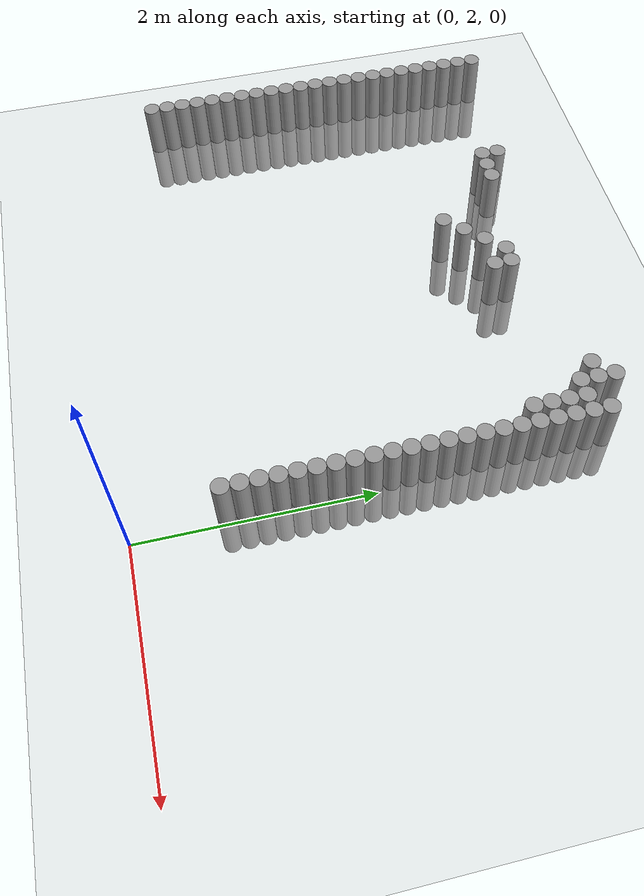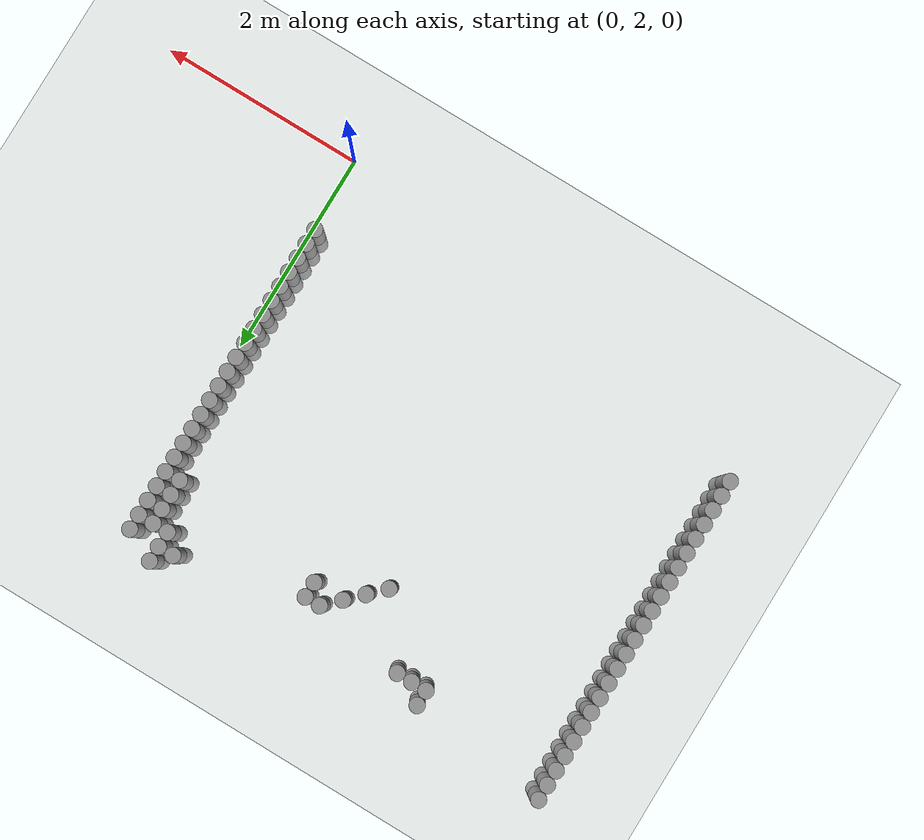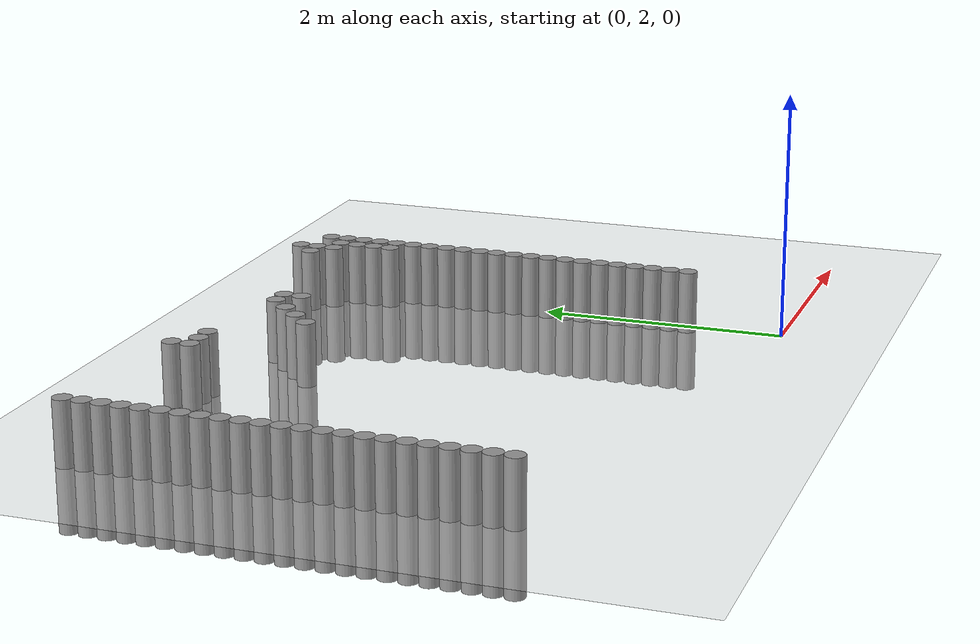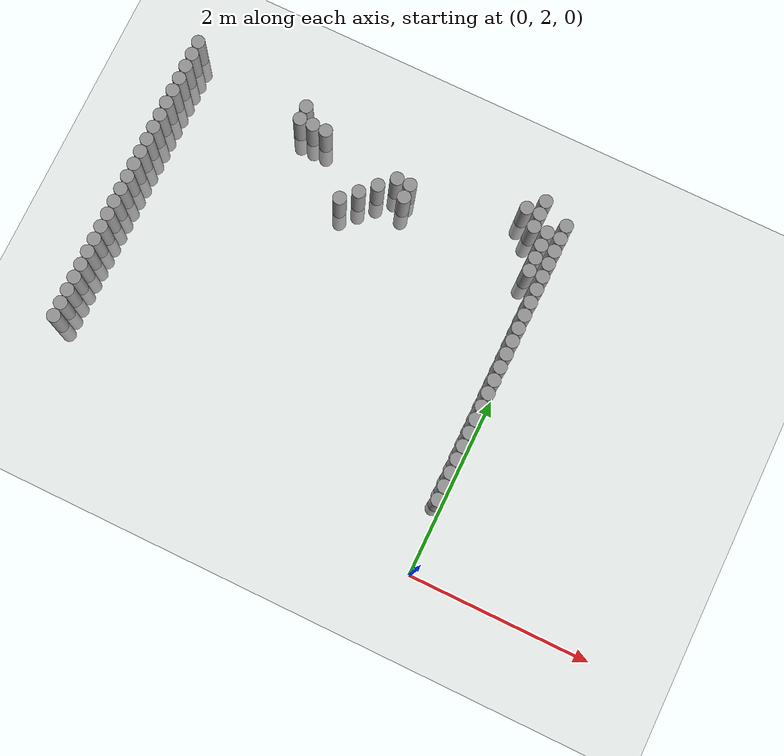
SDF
<sdf version="1.6">
 <world name="default">
  <model name="ground_plane">
   <static>1</static>
   <static>1</static>
   <link name="link">
    <collision name="collision">
     <geometry><plane><normal>0 0 1</normal><size>100 100</size></plane></geometry>
     <surface><friction><ode><mu>100</mu><mu2>50</mu2></ode></friction></surface>
    </collision>
    <visual name="visual">
     <cast_shadows>0</cast_shadows>
     <geometry><plane><normal>0 0 1</normal><size>100 100</size></plane></geometry>
     <material>
      <script><uri>file://media/materials/scripts/gazebo.material</uri><name>Gazebo/Grey</name></script>
     </material>
    </visual>
   </link>
  </model>
  <model name="unit_cylinder_64">
   <static>1</static>
   <pose>-0.075000 2.775000 0.000000 0.000000 0.000000 0.000000</pose>
   <link name="link">
    <inertial>
     <mass>1</mass>
     <inertia><ixx>0.145833</ixx><ixy>0</ixy><ixz>0</ixz><iyy>0.145833</iyy><iyz>0</iyz><izz>0.125</izz></inertia>
    </inertial>
    <collision name="collision">
     <geometry><cylinder><radius>0.075000</radius><length>1</length></cylinder></geometry>
    </collision>
    <visual name="visual">
     <geometry><cylinder><radius>0.075000</radius><length>1</length></cylinder></geometry>
     <material>
      <script><name>Gazebo/Grey</name><uri>file://media/materials/scripts/gazebo.material</uri></script>
     </material>
    </visual>
   </link>
  </model>
  <model name="unit_cylinder_65">
   <static>1</static>
   <pose>-4.425000 2.775000 0.000000 0.000000 0.000000 0.000000</pose>
   <link name="link">
    <inertial>
     <mass>1</mass>
     <inertia><ixx>0.145833</ixx><ixy>0</ixy><ixz>0</ixz><iyy>0.145833</iyy><iyz>0</iyz><izz>0.125</izz></inertia>
    </inertial>
    <collision name="collision">
     <geometry><cylinder><radius>0.075000</radius><length>1</length></cylinder></geometry>
    </collision>
    <visual name="visual">
     <geometry><cylinder><radius>0.075000</radius><length>1</length></cylinder></geometry>
     <material>
      <script><name>Gazebo/Grey</name><uri>file://media/materials/scripts/gazebo.material</uri></script>
     </material>
    </visual>
   </link>
  </model>
  <model name="unit_cylinder_66">
   <static>1</static>
   <pose>-0.075000 2.925000 0.000000 0.000000 0.000000 0.000000</pose>
   <link name="link">
    <inertial>
     <mass>1</mass>
     <inertia><ixx>0.145833</ixx><ixy>0</ixy><ixz>0</ixz><iyy>0.145833</iyy><iyz>0</iyz><izz>0.125</izz></inertia>
    </inertial>
    <collision name="collision">
     <geometry><cylinder><radius>0.075000</radius><length>1</length></cylinder></geometry>
    </collision>
    <visual name="visual">
     <geometry><cylinder><radius>0.075000</radius><length>1</length></cylinder></geometry>
     <material>
      <script><name>Gazebo/Grey</name><uri>file://media/materials/scripts/gazebo.material</uri></script>
     </material>
    </visual>
   </link>
  </model>
  <model name="unit_cylinder_67">
   <static>1</static>
   <pose>-4.425000 2.925000 0.000000 0.000000 0.000000 0.000000</pose>
   <link name="link">
    <inertial>
     <mass>1</mass>
     <inertia><ixx>0.145833</ixx><ixy>0</ixy><ixz>0</ixz><iyy>0.145833</iyy><iyz>0</iyz><izz>0.125</izz></inertia>
    </inertial>
    <collision name="collision">
     <geometry><cylinder><radius>0.075000</radius><length>1</length></cylinder></geometry>
    </collision>
    <visual name="visual">
     <geometry><cylinder><radius>0.075000</radius><length>1</length></cylinder></geometry>
     <material>
      <script><name>Gazebo/Grey</name><uri>file://media/materials/scripts/gazebo.material</uri></script>
     </material>
    </visual>
   </link>
  </model>
  <model name="unit_cylinder_68">
   <static>1</static>
   <pose>-0.075000 3.075000 0.000000 0.000000 0.000000 0.000000</pose>
   <link name="link">
    <inertial>
     <mass>1</mass>
     <inertia><ixx>0.145833</ixx><ixy>0</ixy><ixz>0</ixz><iyy>0.145833</iyy><iyz>0</iyz><izz>0.125</izz></inertia>
    </inertial>
    <collision name="collision">
     <geometry><cylinder><radius>0.075000</radius><length>1</length></cylinder></geometry>
    </collision>
    <visual name="visual">
     <geometry><cylinder><radius>0.075000</radius><length>1</length></cylinder></geometry>
     <material>
      <script><name>Gazebo/Grey</name><uri>file://media/materials/scripts/gazebo.material</uri></script>
     </material>
    </visual>
   </link>
  </model>
  <model name="unit_cylinder_69">
   <static>1</static>
   <pose>-4.425000 3.075000 0.000000 0.000000 0.000000 0.000000</pose>
   <link name="link">
    <inertial>
     <mass>1</mass>
     <inertia><ixx>0.145833</ixx><ixy>0</ixy><ixz>0</ixz><iyy>0.145833</iyy><iyz>0</iyz><izz>0.125</izz></inertia>
    </inertial>
    <collision name="collision">
     <geometry><cylinder><radius>0.075000</radius><length>1</length></cylinder></geometry>
    </collision>
    <visual name="visual">
     <geometry><cylinder><radius>0.075000</radius><length>1</length></cylinder></geometry>
     <material>
      <script><name>Gazebo/Grey</name><uri>file://media/materials/scripts/gazebo.material</uri></script>
     </material>
    </visual>
   </link>
  </model>
  <model name="unit_cylinder_70">
   <static>1</static>
   <pose>-0.075000 3.225000 0.000000 0.000000 0.000000 0.000000</pose>
   <link name="link">
    <inertial>
     <mass>1</mass>
     <inertia><ixx>0.145833</ixx><ixy>0</ixy><ixz>0</ixz><iyy>0.145833</iyy><iyz>0</iyz><izz>0.125</izz></inertia>
    </inertial>
    <collision name="collision">
     <geometry><cylinder><radius>0.075000</radius><length>1</length></cylinder></geometry>
    </collision>
    <visual name="visual">
     <geometry><cylinder><radius>0.075000</radius><length>1</length></cylinder></geometry>
     <material>
      <script><name>Gazebo/Grey</name><uri>file://media/materials/scripts/gazebo.material</uri></script>
     </material>
    </visual>
   </link>
  </model>
  <model name="unit_cylinder_71">
   <static>1</static>
   <pose>-4.425000 3.225000 0.000000 0.000000 0.000000 0.000000</pose>
   <link name="link">
    <inertial>
     <mass>1</mass>
     <inertia><ixx>0.145833</ixx><ixy>0</ixy><ixz>0</ixz><iyy>0.145833</iyy><iyz>0</iyz><izz>0.125</izz></inertia>
    </inertial>
    <collision name="collision">
     <geometry><cylinder><radius>0.075000</radius><length>1</length></cylinder></geometry>
    </collision>
    <visual name="visual">
     <geometry><cylinder><radius>0.075000</radius><length>1</length></cylinder></geometry>
     <material>
      <script><name>Gazebo/Grey</name><uri>file://media/materials/scripts/gazebo.material</uri></script>
     </material>
    </visual>
   </link>
  </model>
  <model name="unit_cylinder_72">
   <static>1</static>
   <pose>-0.075000 3.375000 0.000000 0.000000 0.000000 0.000000</pose>
   <link name="link">
    <inertial>
     <mass>1</mass>
     <inertia><ixx>0.145833</ixx><ixy>0</ixy><ixz>0</ixz><iyy>0.145833</iyy><iyz>0</iyz><izz>0.125</izz></inertia>
    </inertial>
    <collision name="collision">
     <geometry><cylinder><radius>0.075000</radius><length>1</length></cylinder></geometry>
    </collision>
    <visual name="visual">
     <geometry><cylinder><radius>0.075000</radius><length>1</length></cylinder></geometry>
     <material>
      <script><name>Gazebo/Grey</name><uri>file://media/materials/scripts/gazebo.material</uri></script>
     </material>
    </visual>
   </link>
  </model>
  <model name="unit_cylinder_73">
   <static>1</static>
   <pose>-4.425000 3.375000 0.000000 0.000000 0.000000 0.000000</pose>
   <link name="link">
    <inertial>
     <mass>1</mass>
     <inertia><ixx>0.145833</ixx><ixy>0</ixy><ixz>0</ixz><iyy>0.145833</iyy><iyz>0</iyz><izz>0.125</izz></inertia>
    </inertial>
    <collision name="collision">
     <geometry><cylinder><radius>0.075000</radius><length>1</length></cylinder></geometry>
    </collision>
    <visual name="visual">
     <geometry><cylinder><radius>0.075000</radius><length>1</length></cylinder></geometry>
     <material>
      <script><name>Gazebo/Grey</name><uri>file://media/materials/scripts/gazebo.material</uri></script>
     </material>
    </visual>
   </link>
  </model>
  <model name="unit_cylinder_74">
   <static>1</static>
   <pose>-0.075000 3.525000 0.000000 0.000000 0.000000 0.000000</pose>
   <link name="link">
    <inertial>
     <mass>1</mass>
     <inertia><ixx>0.145833</ixx><ixy>0</ixy><ixz>0</ixz><iyy>0.145833</iyy><iyz>0</iyz><izz>0.125</izz></inertia>
    </inertial>
    <collision name="collision">
     <geometry><cylinder><radius>0.075000</radius><length>1</length></cylinder></geometry>
    </collision>
    <visual name="visual">
     <geometry><cylinder><radius>0.075000</radius><length>1</length></cylinder></geometry>
     <material>
      <script><name>Gazebo/Grey</name><uri>file://media/materials/scripts/gazebo.material</uri></script>
     </material>
    </visual>
   </link>
  </model>
  <model name="unit_cylinder_75">
   <static>1</static>
   <pose>-4.425000 3.525000 0.000000 0.000000 0.000000 0.000000</pose>
   <link name="link">
    <inertial>
     <mass>1</mass>
     <inertia><ixx>0.145833</ixx><ixy>0</ixy><ixz>0</ixz><iyy>0.145833</iyy><iyz>0</iyz><izz>0.125</izz></inertia>
    </inertial>
    <collision name="collision">
     <geometry><cylinder><radius>0.075000</radius><length>1</length></cylinder></geometry>
    </collision>
    <visual name="visual">
     <geometry><cylinder><radius>0.075000</radius><length>1</length></cylinder></geometry>
     <material>
      <script><name>Gazebo/Grey</name><uri>file://media/materials/scripts/gazebo.material</uri></script>
     </material>
    </visual>
   </link>
  </model>
  <model name="unit_cylinder_76">
   <static>1</static>
   <pose>-0.075000 3.675000 0.000000 0.000000 0.000000 0.000000</pose>
   <link name="link">
    <inertial>
     <mass>1</mass>
     <inertia><ixx>0.145833</ixx><ixy>0</ixy><ixz>0</ixz><iyy>0.145833</iyy><iyz>0</iyz><izz>0.125</izz></inertia>
    </inertial>
    <collision name="collision">
     <geometry><cylinder><radius>0.075000</radius><length>1</length></cylinder></geometry>
    </collision>
    <visual name="visual">
     <geometry><cylinder><radius>0.075000</radius><length>1</length></cylinder></geometry>
     <material>
      <script><name>Gazebo/Grey</name><uri>file://media/materials/scripts/gazebo.material</uri></script>
     </material>
    </visual>
   </link>
  </model>
  <model name="unit_cylinder_77">
   <static>1</static>
   <pose>-4.425000 3.675000 0.000000 0.000000 0.000000 0.000000</pose>
   <link name="link">
    <inertial>
     <mass>1</mass>
     <inertia><ixx>0.145833</ixx><ixy>0</ixy><ixz>0</ixz><iyy>0.145833</iyy><iyz>0</iyz><izz>0.125</izz></inertia>
    </inertial>
    <collision name="collision">
     <geometry><cylinder><radius>0.075000</radius><length>1</length></cylinder></geometry>
    </collision>
    <visual name="visual">
     <geometry><cylinder><radius>0.075000</radius><length>1</length></cylinder></geometry>
     <material>
      <script><name>Gazebo/Grey</name><uri>file://media/materials/scripts/gazebo.material</uri></script>
     </material>
    </visual>
   </link>
  </model>
  <model name="unit_cylinder_78">
   <static>1</static>
   <pose>-0.075000 3.825000 0.000000 0.000000 0.000000 0.000000</pose>
   <link name="link">
    <inertial>
     <mass>1</mass>
     <inertia><ixx>0.145833</ixx><ixy>0</ixy><ixz>0</ixz><iyy>0.145833</iyy><iyz>0</iyz><izz>0.125</izz></inertia>
    </inertial>
    <collision name="collision">
     <geometry><cylinder><radius>0.075000</radius><length>1</length></cylinder></geometry>
    </collision>
    <visual name="visual">
     <geometry><cylinder><radius>0.075000</radius><length>1</length></cylinder></geometry>
     <material>
      <script><name>Gazebo/Grey</name><uri>file://media/materials/scripts/gazebo.material</uri></script>
     </material>
    </visual>
   </link>
  </model>
  <model name="unit_cylinder_79">
   <static>1</static>
   <pose>-4.425000 3.825000 0.000000 0.000000 0.000000 0.000000</pose>
   <link name="link">
    <inertial>
     <mass>1</mass>
     <inertia><ixx>0.145833</ixx><ixy>0</ixy><ixz>0</ixz><iyy>0.145833</iyy><iyz>0</iyz><izz>0.125</izz></inertia>
    </inertial>
    <collision name="collision">
     <geometry><cylinder><radius>0.075000</radius><length>1</length></cylinder></geometry>
    </collision>
    <visual name="visual">
     <geometry><cylinder><radius>0.075000</radius><length>1</length></cylinder></geometry>
     <material>
      <script><name>Gazebo/Grey</name><uri>file://media/materials/scripts/gazebo.material</uri></script>
     </material>
    </visual>
   </link>
  </model>
  <model name="unit_cylinder_80">
   <static>1</static>
   <pose>-0.075000 3.975000 0.000000 0.000000 0.000000 0.000000</pose>
   <link name="link">
    <inertial>
     <mass>1</mass>
     <inertia><ixx>0.145833</ixx><ixy>0</ixy><ixz>0</ixz><iyy>0.145833</iyy><iyz>0</iyz><izz>0.125</izz></inertia>
    </inertial>
    <collision name="collision">
     <geometry><cylinder><radius>0.075000</radius><length>1</length></cylinder></geometry>
    </collision>
    <visual name="visual">
     <geometry><cylinder><radius>0.075000</radius><length>1</length></cylinder></geometry>
     <material>
      <script><name>Gazebo/Grey</name><uri>file://media/materials/scripts/gazebo.material</uri></script>
     </material>
    </visual>
   </link>
  </model>
  <model name="unit_cylinder_81">
   <static>1</static>
   <pose>-4.425000 3.975000 0.000000 0.000000 0.000000 0.000000</pose>
   <link name="link">
    <inertial>
     <mass>1</mass>
     <inertia><ixx>0.145833</ixx><ixy>0</ixy><ixz>0</ixz><iyy>0.145833</iyy><iyz>0</iyz><izz>0.125</izz></inertia>
    </inertial>
    <collision name="collision">
     <geometry><cylinder><radius>0.075000</radius><length>1</length></cylinder></geometry>
    </collision>
    <visual name="visual">
     <geometry><cylinder><radius>0.075000</radius><length>1</length></cylinder></geometry>
     <material>
      <script><name>Gazebo/Grey</name><uri>file://media/materials/scripts/gazebo.material</uri></script>
     </material>
    </visual>
   </link>
  </model>
  <model name="unit_cylinder_82">
   <static>1</static>
   <pose>-0.075000 4.125000 0.000000 0.000000 0.000000 0.000000</pose>
   <link name="link">
    <inertial>
     <mass>1</mass>
     <inertia><ixx>0.145833</ixx><ixy>0</ixy><ixz>0</ixz><iyy>0.145833</iyy><iyz>0</iyz><izz>0.125</izz></inertia>
    </inertial>
    <collision name="collision">
     <geometry><cylinder><radius>0.075000</radius><length>1</length></cylinder></geometry>
    </collision>
    <visual name="visual">
     <geometry><cylinder><radius>0.075000</radius><length>1</length></cylinder></geometry>
     <material>
      <script><name>Gazebo/Grey</name><uri>file://media/materials/scripts/gazebo.material</uri></script>
     </material>
    </visual>
   </link>
  </model>
  <model name="unit_cylinder_83">
   <static>1</static>
   <pose>-4.425000 4.125000 0.000000 0.000000 0.000000 0.000000</pose>
   <link name="link">
    <inertial>
     <mass>1</mass>
     <inertia><ixx>0.145833</ixx><ixy>0</ixy><ixz>0</ixz><iyy>0.145833</iyy><iyz>0</iyz><izz>0.125</izz></inertia>
    </inertial>
    <collision name="collision">
     <geometry><cylinder><radius>0.075000</radius><length>1</length></cylinder></geometry>
    </collision>
    <visual name="visual">
     <geometry><cylinder><radius>0.075000</radius><length>1</length></cylinder></geometry>
     <material>
      <script><name>Gazebo/Grey</name><uri>file://media/materials/scripts/gazebo.material</uri></script>
     </material>
    </visual>
   </link>
  </model>
  <model name="unit_cylinder_84">
   <static>1</static>
   <pose>-0.075000 4.275000 0.000000 0.000000 0.000000 0.000000</pose>
   <link name="link">
    <inertial>
     <mass>1</mass>
     <inertia><ixx>0.145833</ixx><ixy>0</ixy><ixz>0</ixz><iyy>0.145833</iyy><iyz>0</iyz><izz>0.125</izz></inertia>
    </inertial>
    <collision name="collision">
     <geometry><cylinder><radius>0.075000</radius><length>1</length></cylinder></geometry>
    </collision>
    <visual name="visual">
     <geometry><cylinder><radius>0.075000</radius><length>1</length></cylinder></geometry>
     <material>
      <script><name>Gazebo/Grey</name><uri>file://media/materials/scripts/gazebo.material</uri></script>
     </material>
    </visual>
   </link>
  </model>
  <model name="unit_cylinder_85">
   <static>1</static>
   <pose>-4.425000 4.275000 0.000000 0.000000 0.000000 0.000000</pose>
   <link name="link">
    <inertial>
     <mass>1</mass>
     <inertia><ixx>0.145833</ixx><ixy>0</ixy><ixz>0</ixz><iyy>0.145833</iyy><iyz>0</iyz><izz>0.125</izz></inertia>
    </inertial>
    <collision name="collision">
     <geometry><cylinder><radius>0.075000</radius><length>1</length></cylinder></geometry>
    </collision>
    <visual name="visual">
     <geometry><cylinder><radius>0.075000</radius><length>1</length></cylinder></geometry>
     <material>
      <script><name>Gazebo/Grey</name><uri>file://media/materials/scripts/gazebo.material</uri></script>
     </material>
    </visual>
   </link>
  </model>
  <model name="unit_cylinder_86">
   <static>1</static>
   <pose>-0.075000 4.425000 0.000000 0.000000 0.000000 0.000000</pose>
   <link name="link">
    <inertial>
     <mass>1</mass>
     <inertia><ixx>0.145833</ixx><ixy>0</ixy><ixz>0</ixz><iyy>0.145833</iyy><iyz>0</iyz><izz>0.125</izz></inertia>
    </inertial>
    <collision name="collision">
     <geometry><cylinder><radius>0.075000</radius><length>1</length></cylinder></geometry>
    </collision>
    <visual name="visual">
     <geometry><cylinder><radius>0.075000</radius><length>1</length></cylinder></geometry>
     <material>
      <script><name>Gazebo/Grey</name><uri>file://media/materials/scripts/gazebo.material</uri></script>
     </material>
    </visual>
   </link>
  </model>
  <model name="unit_cylinder_87">
   <static>1</static>
   <pose>-4.425000 4.425000 0.000000 0.000000 0.000000 0.000000</pose>
   <link name="link">
    <inertial>
     <mass>1</mass>
     <inertia><ixx>0.145833</ixx><ixy>0</ixy><ixz>0</ixz><iyy>0.145833</iyy><iyz>0</iyz><izz>0.125</izz></inertia>
    </inertial>
    <collision name="collision">
     <geometry><cylinder><radius>0.075000</radius><length>1</length></cylinder></geometry>
    </collision>
    <visual name="visual">
     <geometry><cylinder><radius>0.075000</radius><length>1</length></cylinder></geometry>
     <material>
      <script><name>Gazebo/Grey</name><uri>file://media/materials/scripts/gazebo.material</uri></script>
     </material>
    </visual>
   </link>
  </model>
  <model name="unit_cylinder_88">
   <static>1</static>
   <pose>-0.075000 4.575000 0.000000 0.000000 0.000000 0.000000</pose>
   <link name="link">
    <inertial>
     <mass>1</mass>
     <inertia><ixx>0.145833</ixx><ixy>0</ixy><ixz>0</ixz><iyy>0.145833</iyy><iyz>0</iyz><izz>0.125</izz></inertia>
    </inertial>
    <collision name="collision">
     <geometry><cylinder><radius>0.075000</radius><length>1</length></cylinder></geometry>
    </collision>
    <visual name="visual">
     <geometry><cylinder><radius>0.075000</radius><length>1</length></cylinder></geometry>
     <material>
      <script><name>Gazebo/Grey</name><uri>file://media/materials/scripts/gazebo.material</uri></script>
     </material>
    </visual>
   </link>
  </model>
  <model name="unit_cylinder_89">
   <static>1</static>
   <pose>-4.425000 4.575000 0.000000 0.000000 0.000000 0.000000</pose>
   <link name="link">
    <inertial>
     <mass>1</mass>
     <inertia><ixx>0.145833</ixx><ixy>0</ixy><ixz>0</ixz><iyy>0.145833</iyy><iyz>0</iyz><izz>0.125</izz></inertia>
    </inertial>
    <collision name="collision">
     <geometry><cylinder><radius>0.075000</radius><length>1</length></cylinder></geometry>
    </collision>
    <visual name="visual">
     <geometry><cylinder><radius>0.075000</radius><length>1</length></cylinder></geometry>
     <material>
      <script><name>Gazebo/Grey</name><uri>file://media/materials/scripts/gazebo.material</uri></script>
     </material>
    </visual>
   </link>
  </model>
  <model name="unit_cylinder_90">
   <static>1</static>
   <pose>-0.075000 4.725000 0.000000 0.000000 0.000000 0.000000</pose>
   <link name="link">
    <inertial>
     <mass>1</mass>
     <inertia><ixx>0.145833</ixx><ixy>0</ixy><ixz>0</ixz><iyy>0.145833</iyy><iyz>0</iyz><izz>0.125</izz></inertia>
    </inertial>
    <collision name="collision">
     <geometry><cylinder><radius>0.075000</radius><length>1</length></cylinder></geometry>
    </collision>
    <visual name="visual">
     <geometry><cylinder><radius>0.075000</radius><length>1</length></cylinder></geometry>
     <material>
      <script><name>Gazebo/Grey</name><uri>file://media/materials/scripts/gazebo.material</uri></script>
     </material>
    </visual>
   </link>
  </model>
  <model name="unit_cylinder_91">
   <static>1</static>
   <pose>-4.425000 4.725000 0.000000 0.000000 0.000000 0.000000</pose>
   <link name="link">
    <inertial>
     <mass>1</mass>
     <inertia><ixx>0.145833</ixx><ixy>0</ixy><ixz>0</ixz><iyy>0.145833</iyy><iyz>0</iyz><izz>0.125</izz></inertia>
    </inertial>
    <collision name="collision">
     <geometry><cylinder><radius>0.075000</radius><length>1</length></cylinder></geometry>
    </collision>
    <visual name="visual">
     <geometry><cylinder><radius>0.075000</radius><length>1</length></cylinder></geometry>
     <material>
      <script><name>Gazebo/Grey</name><uri>file://media/materials/scripts/gazebo.material</uri></script>
     </material>
    </visual>
   </link>
  </model>
  <model name="unit_cylinder_92">
   <static>1</static>
   <pose>-0.075000 4.875000 0.000000 0.000000 0.000000 0.000000</pose>
   <link name="link">
    <inertial>
     <mass>1</mass>
     <inertia><ixx>0.145833</ixx><ixy>0</ixy><ixz>0</ixz><iyy>0.145833</iyy><iyz>0</iyz><izz>0.125</izz></inertia>
    </inertial>
    <collision name="collision">
     <geometry><cylinder><radius>0.075000</radius><length>1</length></cylinder></geometry>
    </collision>
    <visual name="visual">
     <geometry><cylinder><radius>0.075000</radius><length>1</length></cylinder></geometry>
     <material>
      <script><name>Gazebo/Grey</name><uri>file://media/materials/scripts/gazebo.material</uri></script>
     </material>
    </visual>
   </link>
  </model>
  <model name="unit_cylinder_93">
   <static>1</static>
   <pose>-4.425000 4.875000 0.000000 0.000000 0.000000 0.000000</pose>
   <link name="link">
    <inertial>
     <mass>1</mass>
     <inertia><ixx>0.145833</ixx><ixy>0</ixy><ixz>0</ixz><iyy>0.145833</iyy><iyz>0</iyz><izz>0.125</izz></inertia>
    </inertial>
    <collision name="collision">
     <geometry><cylinder><radius>0.075000</radius><length>1</length></cylinder></geometry>
    </collision>
    <visual name="visual">
     <geometry><cylinder><radius>0.075000</radius><length>1</length></cylinder></geometry>
     <material>
      <script><name>Gazebo/Grey</name><uri>file://media/materials/scripts/gazebo.material</uri></script>
     </material>
    </visual>
   </link>
  </model>
  <model name="unit_cylinder_94">
   <static>1</static>
   <pose>-0.075000 5.025000 0.000000 0.000000 0.000000 0.000000</pose>
   <link name="link">
    <inertial>
     <mass>1</mass>
     <inertia><ixx>0.145833</ixx><ixy>0</ixy><ixz>0</ixz><iyy>0.145833</iyy><iyz>0</iyz><izz>0.125</izz></inertia>
    </inertial>
    <collision name="collision">
     <geometry><cylinder><radius>0.075000</radius><length>1</length></cylinder></geometry>
    </collision>
    <visual name="visual">
     <geometry><cylinder><radius>0.075000</radius><length>1</length></cylinder></geometry>
     <material>
      <script><name>Gazebo/Grey</name><uri>file://media/materials/scripts/gazebo.material</uri></script>
     </material>
    </visual>
   </link>
  </model>
  <model name="unit_cylinder_95">
   <static>1</static>
   <pose>-4.425000 5.025000 0.000000 0.000000 0.000000 0.000000</pose>
   <link name="link">
    <inertial>
     <mass>1</mass>
     <inertia><ixx>0.145833</ixx><ixy>0</ixy><ixz>0</ixz><iyy>0.145833</iyy><iyz>0</iyz><izz>0.125</izz></inertia>
    </inertial>
    <collision name="collision">
     <geometry><cylinder><radius>0.075000</radius><length>1</length></cylinder></geometry>
    </collision>
    <visual name="visual">
     <geometry><cylinder><radius>0.075000</radius><length>1</length></cylinder></geometry>
     <material>
      <script><name>Gazebo/Grey</name><uri>file://media/materials/scripts/gazebo.material</uri></script>
     </material>
    </visual>
   </link>
  </model>
  <model name="unit_cylinder_96">
   <static>1</static>
   <pose>-4.425000 5.175000 0.000000 0.000000 0.000000 0.000000</pose>
   <link name="link">
    <inertial>
     <mass>1</mass>
     <inertia><ixx>0.145833</ixx><ixy>0</ixy><ixz>0</ixz><iyy>0.145833</iyy><iyz>0</iyz><izz>0.125</izz></inertia>
    </inertial>
    <collision name="collision">
     <geometry><cylinder><radius>0.075000</radius><length>1</length></cylinder></geometry>
    </collision>
    <visual name="visual">
     <geometry><cylinder><radius>0.075000</radius><length>1</length></cylinder></geometry>
     <material>
      <script><name>Gazebo/Grey</name><uri>file://media/materials/scripts/gazebo.material</uri></script>
     </material>
    </visual>
   </link>
  </model>
  <model name="unit_cylinder_97">
   <static>1</static>
   <pose>-4.425000 5.325000 0.000000 0.000000 0.000000 0.000000</pose>
   <link name="link">
    <inertial>
     <mass>1</mass>
     <inertia><ixx>0.145833</ixx><ixy>0</ixy><ixz>0</ixz><iyy>0.145833</iyy><iyz>0</iyz><izz>0.125</izz></inertia>
    </inertial>
    <collision name="collision">
     <geometry><cylinder><radius>0.075000</radius><length>1</length></cylinder></geometry>
    </collision>
    <visual name="visual">
     <geometry><cylinder><radius>0.075000</radius><length>1</length></cylinder></geometry>
     <material>
      <script><name>Gazebo/Grey</name><uri>file://media/materials/scripts/gazebo.material</uri></script>
     </material>
    </visual>
   </link>
  </model>
  <model name="unit_cylinder_98">
   <static>1</static>
   <pose>-4.425000 5.475000 0.000000 0.000000 0.000000 0.000000</pose>
   <link name="link">
    <inertial>
     <mass>1</mass>
     <inertia><ixx>0.145833</ixx><ixy>0</ixy><ixz>0</ixz><iyy>0.145833</iyy><iyz>0</iyz><izz>0.125</izz></inertia>
    </inertial>
    <collision name="collision">
     <geometry><cylinder><radius>0.075000</radius><length>1</length></cylinder></geometry>
    </collision>
    <visual name="visual">
     <geometry><cylinder><radius>0.075000</radius><length>1</length></cylinder></geometry>
     <material>
      <script><name>Gazebo/Grey</name><uri>file://media/materials/scripts/gazebo.material</uri></script>
     </material>
    </visual>
   </link>
  </model>
  <model name="unit_cylinder_99">
   <static>1</static>
   <pose>-4.425000 5.625000 0.000000 0.000000 0.000000 0.000000</pose>
   <link name="link">
    <inertial>
     <mass>1</mass>
     <inertia><ixx>0.145833</ixx><ixy>0</ixy><ixz>0</ixz><iyy>0.145833</iyy><iyz>0</iyz><izz>0.125</izz></inertia>
    </inertial>
    <collision name="collision">
     <geometry><cylinder><radius>0.075000</radius><length>1</length></cylinder></geometry>
    </collision>
    <visual name="visual">
     <geometry><cylinder><radius>0.075000</radius><length>1</length></cylinder></geometry>
     <material>
      <script><name>Gazebo/Grey</name><uri>file://media/materials/scripts/gazebo.material</uri></script>
     </material>
    </visual>
   </link>
  </model>
  <model name="unit_cylinder_100">
   <static>1</static>
   <pose>-4.425000 5.775000 0.000000 0.000000 0.000000 0.000000</pose>
   <link name="link">
    <inertial>
     <mass>1</mass>
     <inertia><ixx>0.145833</ixx><ixy>0</ixy><ixz>0</ixz><iyy>0.145833</iyy><iyz>0</iyz><izz>0.125</izz></inertia>
    </inertial>
    <collision name="collision">
     <geometry><cylinder><radius>0.075000</radius><length>1</length></cylinder></geometry>
    </collision>
    <visual name="visual">
     <geometry><cylinder><radius>0.075000</radius><length>1</length></cylinder></geometry>
     <material>
      <script><name>Gazebo/Grey</name><uri>file://media/materials/scripts/gazebo.material</uri></script>
     </material>
    </visual>
   </link>
  </model>
  <model name="unit_cylinder_101">
   <static>1</static>
   <pose>-4.425000 5.925000 0.000000 0.000000 0.000000 0.000000</pose>
   <link name="link">
    <inertial>
     <mass>1</mass>
     <inertia><ixx>0.145833</ixx><ixy>0</ixy><ixz>0</ixz><iyy>0.145833</iyy><iyz>0</iyz><izz>0.125</izz></inertia>
    </inertial>
    <collision name="collision">
     <geometry><cylinder><radius>0.075000</radius><length>1</length></cylinder></geometry>
    </collision>
    <visual name="visual">
     <geometry><cylinder><radius>0.075000</radius><length>1</length></cylinder></geometry>
     <material>
      <script><name>Gazebo/Grey</name><uri>file://media/materials/scripts/gazebo.material</uri></script>
     </material>
    </visual>
   </link>
  </model>
  <model name="unit_cylinder_102">
   <static>1</static>
   <pose>-4.425000 6.075000 0.000000 0.000000 0.000000 0.000000</pose>
   <link name="link">
    <inertial>
     <mass>1</mass>
     <inertia><ixx>0.145833</ixx><ixy>0</ixy><ixz>0</ixz><iyy>0.145833</iyy><iyz>0</iyz><izz>0.125</izz></inertia>
    </inertial>
    <collision name="collision">
     <geometry><cylinder><radius>0.075000</radius><length>1</length></cylinder></geometry>
    </collision>
    <visual name="visual">
     <geometry><cylinder><radius>0.075000</radius><length>1</length></cylinder></geometry>
     <material>
      <script><name>Gazebo/Grey</name><uri>file://media/materials/scripts/gazebo.material</uri></script>
     </material>
    </visual>
   </link>
  </model>
  <model name="unit_cylinder_139">
   <static>1</static>
   <pose>-3.075000 5.775000 0.000000 0.000000 0.000000 0.000000</pose>
   <link name="link">
    <inertial>
     <mass>1</mass>
     <inertia><ixx>0.145833</ixx><ixy>0</ixy><ixz>0</ixz><iyy>0.145833</iyy><iyz>0</iyz><izz>0.125</izz></inertia>
    </inertial>
    <collision name="collision">
     <geometry><cylinder><radius>0.075000</radius><length>1</length></cylinder></geometry>
    </collision>
    <visual name="visual">
     <geometry><cylinder><radius>0.075000</radius><length>1</length></cylinder></geometry>
     <material>
      <script><name>Gazebo/Grey</name><uri>file://media/materials/scripts/gazebo.material</uri></script>
     </material>
    </visual>
   </link>
  </model>
  <model name="unit_cylinder_140">
   <static>1</static>
   <pose>-3.075000 5.925000 0.000000 0.000000 0.000000 0.000000</pose>
   <link name="link">
    <inertial>
     <mass>1</mass>
     <inertia><ixx>0.145833</ixx><ixy>0</ixy><ixz>0</ixz><iyy>0.145833</iyy><iyz>0</iyz><izz>0.125</izz></inertia>
    </inertial>
    <collision name="collision">
     <geometry><cylinder><radius>0.075000</radius><length>1</length></cylinder></geometry>
    </collision>
    <visual name="visual">
     <geometry><cylinder><radius>0.075000</radius><length>1</length></cylinder></geometry>
     <material>
      <script><name>Gazebo/Grey</name><uri>file://media/materials/scripts/gazebo.material</uri></script>
     </material>
    </visual>
   </link>
  </model>
  <model name="unit_cylinder_146">
   <static>1</static>
   <pose>-2.925000 5.775000 0.000000 0.000000 0.000000 0.000000</pose>
   <link name="link">
    <inertial>
     <mass>1</mass>
     <inertia><ixx>0.145833</ixx><ixy>0</ixy><ixz>0</ixz><iyy>0.145833</iyy><iyz>0</iyz><izz>0.125</izz></inertia>
    </inertial>
    <collision name="collision">
     <geometry><cylinder><radius>0.075000</radius><length>1</length></cylinder></geometry>
    </collision>
    <visual name="visual">
     <geometry><cylinder><radius>0.075000</radius><length>1</length></cylinder></geometry>
     <material>
      <script><name>Gazebo/Grey</name><uri>file://media/materials/scripts/gazebo.material</uri></script>
     </material>
    </visual>
   </link>
  </model>
  <model name="unit_cylinder_154">
   <static>1</static>
   <pose>-2.775000 5.775000 0.000000 0.000000 0.000000 0.000000</pose>
   <link name="link">
    <inertial>
     <mass>1</mass>
     <inertia><ixx>0.145833</ixx><ixy>0</ixy><ixz>0</ixz><iyy>0.145833</iyy><iyz>0</iyz><izz>0.125</izz></inertia>
    </inertial>
    <collision name="collision">
     <geometry><cylinder><radius>0.075000</radius><length>1</length></cylinder></geometry>
    </collision>
    <visual name="visual">
     <geometry><cylinder><radius>0.075000</radius><length>1</length></cylinder></geometry>
     <material>
      <script><name>Gazebo/Grey</name><uri>file://media/materials/scripts/gazebo.material</uri></script>
     </material>
    </visual>
   </link>
  </model>
  <model name="unit_cylinder_164">
   <static>1</static>
   <pose>-2.325000 5.175000 0.000000 0.000000 0.000000 0.000000</pose>
   <link name="link">
    <inertial>
     <mass>1</mass>
     <inertia><ixx>0.145833</ixx><ixy>0</ixy><ixz>0</ixz><iyy>0.145833</iyy><iyz>0</iyz><izz>0.125</izz></inertia>
    </inertial>
    <collision name="collision">
     <geometry><cylinder><radius>0.075000</radius><length>1</length></cylinder></geometry>
    </collision>
    <visual name="visual">
     <geometry><cylinder><radius>0.075000</radius><length>1</length></cylinder></geometry>
     <material>
      <script><name>Gazebo/Grey</name><uri>file://media/materials/scripts/gazebo.material</uri></script>
     </material>
    </visual>
   </link>
  </model>
  <model name="unit_cylinder_165">
   <static>1</static>
   <pose>-2.175000 5.325000 0.000000 0.000000 0.000000 0.000000</pose>
   <link name="link">
    <inertial>
     <mass>1</mass>
     <inertia><ixx>0.145833</ixx><ixy>0</ixy><ixz>0</ixz><iyy>0.145833</iyy><iyz>0</iyz><izz>0.125</izz></inertia>
    </inertial>
    <collision name="collision">
     <geometry><cylinder><radius>0.075000</radius><length>1</length></cylinder></geometry>
    </collision>
    <visual name="visual">
     <geometry><cylinder><radius>0.075000</radius><length>1</length></cylinder></geometry>
     <material>
      <script><name>Gazebo/Grey</name><uri>file://media/materials/scripts/gazebo.material</uri></script>
     </material>
    </visual>
   </link>
  </model>
  <model name="unit_cylinder_168">
   <static>1</static>
   <pose>-2.025000 5.475000 0.000000 0.000000 0.000000 0.000000</pose>
   <link name="link">
    <inertial>
     <mass>1</mass>
     <inertia><ixx>0.145833</ixx><ixy>0</ixy><ixz>0</ixz><iyy>0.145833</iyy><iyz>0</iyz><izz>0.125</izz></inertia>
    </inertial>
    <collision name="collision">
     <geometry><cylinder><radius>0.075000</radius><length>1</length></cylinder></geometry>
    </collision>
    <visual name="visual">
     <geometry><cylinder><radius>0.075000</radius><length>1</length></cylinder></geometry>
     <material>
      <script><name>Gazebo/Grey</name><uri>file://media/materials/scripts/gazebo.material</uri></script>
     </material>
    </visual>
   </link>
  </model>
  <model name="unit_cylinder_171">
   <static>1</static>
   <pose>-1.875000 5.625000 0.000000 0.000000 0.000000 0.000000</pose>
   <link name="link">
    <inertial>
     <mass>1</mass>
     <inertia><ixx>0.145833</ixx><ixy>0</ixy><ixz>0</ixz><iyy>0.145833</iyy><iyz>0</iyz><izz>0.125</izz></inertia>
    </inertial>
    <collision name="collision">
     <geometry><cylinder><radius>0.075000</radius><length>1</length></cylinder></geometry>
    </collision>
    <visual name="visual">
     <geometry><cylinder><radius>0.075000</radius><length>1</length></cylinder></geometry>
     <material>
      <script><name>Gazebo/Grey</name><uri>file://media/materials/scripts/gazebo.material</uri></script>
     </material>
    </visual>
   </link>
  </model>
  <model name="unit_cylinder_176">
   <static>1</static>
   <pose>-1.725000 5.475000 0.000000 0.000000 0.000000 0.000000</pose>
   <link name="link">
    <inertial>
     <mass>1</mass>
     <inertia><ixx>0.145833</ixx><ixy>0</ixy><ixz>0</ixz><iyy>0.145833</iyy><iyz>0</iyz><izz>0.125</izz></inertia>
    </inertial>
    <collision name="collision">
     <geometry><cylinder><radius>0.075000</radius><length>1</length></cylinder></geometry>
    </collision>
    <visual name="visual">
     <geometry><cylinder><radius>0.075000</radius><length>1</length></cylinder></geometry>
     <material>
      <script><name>Gazebo/Grey</name><uri>file://media/materials/scripts/gazebo.material</uri></script>
     </material>
    </visual>
   </link>
  </model>
  <model name="unit_cylinder_177">
   <static>1</static>
   <pose>-1.725000 5.625000 0.000000 0.000000 0.000000 0.000000</pose>
   <link name="link">
    <inertial>
     <mass>1</mass>
     <inertia><ixx>0.145833</ixx><ixy>0</ixy><ixz>0</ixz><iyy>0.145833</iyy><iyz>0</iyz><izz>0.125</izz></inertia>
    </inertial>
    <collision name="collision">
     <geometry><cylinder><radius>0.075000</radius><length>1</length></cylinder></geometry>
    </collision>
    <visual name="visual">
     <geometry><cylinder><radius>0.075000</radius><length>1</length></cylinder></geometry>
     <material>
      <script><name>Gazebo/Grey</name><uri>file://media/materials/scripts/gazebo.material</uri></script>
     </material>
    </visual>
   </link>
  </model>
  <model name="unit_cylinder_194">
   <static>1</static>
   <pose>-0.525000 5.925000 0.000000 0.000000 0.000000 0.000000</pose>
   <link name="link">
    <inertial>
     <mass>1</mass>
     <inertia><ixx>0.145833</ixx><ixy>0</ixy><ixz>0</ixz><iyy>0.145833</iyy><iyz>0</iyz><izz>0.125</izz></inertia>
    </inertial>
    <collision name="collision">
     <geometry><cylinder><radius>0.075000</radius><length>1</length></cylinder></geometry>
    </collision>
    <visual name="visual">
     <geometry><cylinder><radius>0.075000</radius><length>1</length></cylinder></geometry>
     <material>
      <script><name>Gazebo/Grey</name><uri>file://media/materials/scripts/gazebo.material</uri></script>
     </material>
    </visual>
   </link>
  </model>
  <model name="unit_cylinder_201">
   <static>1</static>
   <pose>-0.375000 5.775000 0.000000 0.000000 0.000000 0.000000</pose>
   <link name="link">
    <inertial>
     <mass>1</mass>
     <inertia><ixx>0.145833</ixx><ixy>0</ixy><ixz>0</ixz><iyy>0.145833</iyy><iyz>0</iyz><izz>0.125</izz></inertia>
    </inertial>
    <collision name="collision">
     <geometry><cylinder><radius>0.075000</radius><length>1</length></cylinder></geometry>
    </collision>
    <visual name="visual">
     <geometry><cylinder><radius>0.075000</radius><length>1</length></cylinder></geometry>
     <material>
      <script><name>Gazebo/Grey</name><uri>file://media/materials/scripts/gazebo.material</uri></script>
     </material>
    </visual>
   </link>
  </model>
  <model name="unit_cylinder_202">
   <static>1</static>
   <pose>-0.375000 5.925000 0.000000 0.000000 0.000000 0.000000</pose>
   <link name="link">
    <inertial>
     <mass>1</mass>
     <inertia><ixx>0.145833</ixx><ixy>0</ixy><ixz>0</ixz><iyy>0.145833</iyy><iyz>0</iyz><izz>0.125</izz></inertia>
    </inertial>
    <collision name="collision">
     <geometry><cylinder><radius>0.075000</radius><length>1</length></cylinder></geometry>
    </collision>
    <visual name="visual">
     <geometry><cylinder><radius>0.075000</radius><length>1</length></cylinder></geometry>
     <material>
      <script><name>Gazebo/Grey</name><uri>file://media/materials/scripts/gazebo.material</uri></script>
     </material>
    </visual>
   </link>
  </model>
  <model name="unit_cylinder_203">
   <static>1</static>
   <pose>-0.375000 6.075000 0.000000 0.000000 0.000000 0.000000</pose>
   <link name="link">
    <inertial>
     <mass>1</mass>
     <inertia><ixx>0.145833</ixx><ixy>0</ixy><ixz>0</ixz><iyy>0.145833</iyy><iyz>0</iyz><izz>0.125</izz></inertia>
    </inertial>
    <collision name="collision">
     <geometry><cylinder><radius>0.075000</radius><length>1</length></cylinder></geometry>
    </collision>
    <visual name="visual">
     <geometry><cylinder><radius>0.075000</radius><length>1</length></cylinder></geometry>
     <material>
      <script><name>Gazebo/Grey</name><uri>file://media/materials/scripts/gazebo.material</uri></script>
     </material>
    </visual>
   </link>
  </model>
  <model name="unit_cylinder_208">
   <static>1</static>
   <pose>-0.225000 5.325000 0.000000 0.000000 0.000000 0.000000</pose>
   <link name="link">
    <inertial>
     <mass>1</mass>
     <inertia><ixx>0.145833</ixx><ixy>0</ixy><ixz>0</ixz><iyy>0.145833</iyy><iyz>0</iyz><izz>0.125</izz></inertia>
    </inertial>
    <collision name="collision">
     <geometry><cylinder><radius>0.075000</radius><length>1</length></cylinder></geometry>
    </collision>
    <visual name="visual">
     <geometry><cylinder><radius>0.075000</radius><length>1</length></cylinder></geometry>
     <material>
      <script><name>Gazebo/Grey</name><uri>file://media/materials/scripts/gazebo.material</uri></script>
     </material>
    </visual>
   </link>
  </model>
  <model name="unit_cylinder_209">
   <static>1</static>
   <pose>-0.225000 5.475000 0.000000 0.000000 0.000000 0.000000</pose>
   <link name="link">
    <inertial>
     <mass>1</mass>
     <inertia><ixx>0.145833</ixx><ixy>0</ixy><ixz>0</ixz><iyy>0.145833</iyy><iyz>0</iyz><izz>0.125</izz></inertia>
    </inertial>
    <collision name="collision">
     <geometry><cylinder><radius>0.075000</radius><length>1</length></cylinder></geometry>
    </collision>
    <visual name="visual">
     <geometry><cylinder><radius>0.075000</radius><length>1</length></cylinder></geometry>
     <material>
      <script><name>Gazebo/Grey</name><uri>file://media/materials/scripts/gazebo.material</uri></script>
     </material>
    </visual>
   </link>
  </model>
  <model name="unit_cylinder_210">
   <static>1</static>
   <pose>-0.225000 5.625000 0.000000 0.000000 0.000000 0.000000</pose>
   <link name="link">
    <inertial>
     <mass>1</mass>
     <inertia><ixx>0.145833</ixx><ixy>0</ixy><ixz>0</ixz><iyy>0.145833</iyy><iyz>0</iyz><izz>0.125</izz></inertia>
    </inertial>
    <collision name="collision">
     <geometry><cylinder><radius>0.075000</radius><length>1</length></cylinder></geometry>
    </collision>
    <visual name="visual">
     <geometry><cylinder><radius>0.075000</radius><length>1</length></cylinder></geometry>
     <material>
      <script><name>Gazebo/Grey</name><uri>file://media/materials/scripts/gazebo.material</uri></script>
     </material>
    </visual>
   </link>
  </model>
  <model name="unit_cylinder_211">
   <static>1</static>
   <pose>-0.225000 5.775000 0.000000 0.000000 0.000000 0.000000</pose>
   <link name="link">
    <inertial>
     <mass>1</mass>
     <inertia><ixx>0.145833</ixx><ixy>0</ixy><ixz>0</ixz><iyy>0.145833</iyy><iyz>0</iyz><izz>0.125</izz></inertia>
    </inertial>
    <collision name="collision">
     <geometry><cylinder><radius>0.075000</radius><length>1</length></cylinder></geometry>
    </collision>
    <visual name="visual">
     <geometry><cylinder><radius>0.075000</radius><length>1</length></cylinder></geometry>
     <material>
      <script><name>Gazebo/Grey</name><uri>file://media/materials/scripts/gazebo.material</uri></script>
     </material>
    </visual>
   </link>
  </model>
  <model name="unit_cylinder_224">
   <static>1</static>
   <pose>-0.075000 5.175000 0.000000 0.000000 0.000000 0.000000</pose>
   <link name="link">
    <inertial>
     <mass>1</mass>
     <inertia><ixx>0.145833</ixx><ixy>0</ixy><ixz>0</ixz><iyy>0.145833</iyy><iyz>0</iyz><izz>0.125</izz></inertia>
    </inertial>
    <collision name="collision">
     <geometry><cylinder><radius>0.075000</radius><length>1</length></cylinder></geometry>
    </collision>
    <visual name="visual">
     <geometry><cylinder><radius>0.075000</radius><length>1</length></cylinder></geometry>
     <material>
      <script><name>Gazebo/Grey</name><uri>file://media/materials/scripts/gazebo.material</uri></script>
     </material>
    </visual>
   </link>
  </model>
  <model name="unit_cylinder_225">
   <static>1</static>
   <pose>-0.075000 5.325000 0.000000 0.000000 0.000000 0.000000</pose>
   <link name="link">
    <inertial>
     <mass>1</mass>
     <inertia><ixx>0.145833</ixx><ixy>0</ixy><ixz>0</ixz><iyy>0.145833</iyy><iyz>0</iyz><izz>0.125</izz></inertia>
    </inertial>
    <collision name="collision">
     <geometry><cylinder><radius>0.075000</radius><length>1</length></cylinder></geometry>
    </collision>
    <visual name="visual">
     <geometry><cylinder><radius>0.075000</radius><length>1</length></cylinder></geometry>
     <material>
      <script><name>Gazebo/Grey</name><uri>file://media/materials/scripts/gazebo.material</uri></script>
     </material>
    </visual>
   </link>
  </model>
  <model name="unit_cylinder_226">
   <static>1</static>
   <pose>-0.075000 5.475000 0.000000 0.000000 0.000000 0.000000</pose>
   <link name="link">
    <inertial>
     <mass>1</mass>
     <inertia><ixx>0.145833</ixx><ixy>0</ixy><ixz>0</ixz><iyy>0.145833</iyy><iyz>0</iyz><izz>0.125</izz></inertia>
    </inertial>
    <collision name="collision">
     <geometry><cylinder><radius>0.075000</radius><length>1</length></cylinder></geometry>
    </collision>
    <visual name="visual">
     <geometry><cylinder><radius>0.075000</radius><length>1</length></cylinder></geometry>
     <material>
      <script><name>Gazebo/Grey</name><uri>file://media/materials/scripts/gazebo.material</uri></script>
     </material>
    </visual>
   </link>
  </model>
  <model name="unit_cylinder_227">
   <static>1</static>
   <pose>-0.075000 5.625000 0.000000 0.000000 0.000000 0.000000</pose>
   <link name="link">
    <inertial>
     <mass>1</mass>
     <inertia><ixx>0.145833</ixx><ixy>0</ixy><ixz>0</ixz><iyy>0.145833</iyy><iyz>0</iyz><izz>0.125</izz></inertia>
    </inertial>
    <collision name="collision">
     <geometry><cylinder><radius>0.075000</radius><length>1</length></cylinder></geometry>
    </collision>
    <visual name="visual">
     <geometry><cylinder><radius>0.075000</radius><length>1</length></cylinder></geometry>
     <material>
      <script><name>Gazebo/Grey</name><uri>file://media/materials/scripts/gazebo.material</uri></script>
     </material>
    </visual>
   </link>
  </model>
  <model name="unit_cylinder_228">
   <static>1</static>
   <pose>-0.075000 5.775000 0.000000 0.000000 0.000000 0.000000</pose>
   <link name="link">
    <inertial>
     <mass>1</mass>
     <inertia><ixx>0.145833</ixx><ixy>0</ixy><ixz>0</ixz><iyy>0.145833</iyy><iyz>0</iyz><izz>0.125</izz></inertia>
    </inertial>
    <collision name="collision">
     <geometry><cylinder><radius>0.075000</radius><length>1</length></cylinder></geometry>
    </collision>
    <visual name="visual">
     <geometry><cylinder><radius>0.075000</radius><length>1</length></cylinder></geometry>
     <material>
      <script><name>Gazebo/Grey</name><uri>file://media/materials/scripts/gazebo.material</uri></script>
     </material>
    </visual>
   </link>
  </model>
  <model name="unit_cylinder_229">
   <static>1</static>
   <pose>-0.075000 5.925000 0.000000 0.000000 0.000000 0.000000</pose>
   <link name="link">
    <inertial>
     <mass>1</mass>
     <inertia><ixx>0.145833</ixx><ixy>0</ixy><ixz>0</ixz><iyy>0.145833</iyy><iyz>0</iyz><izz>0.125</izz></inertia>
    </inertial>
    <collision name="collision">
     <geometry><cylinder><radius>0.075000</radius><length>1</length></cylinder></geometry>
    </collision>
    <visual name="visual">
     <geometry><cylinder><radius>0.075000</radius><length>1</length></cylinder></geometry>
     <material>
      <script><name>Gazebo/Grey</name><uri>file://media/materials/scripts/gazebo.material</uri></script>
     </material>
    </visual>
   </link>
  </model>
 </world>
</sdf>
